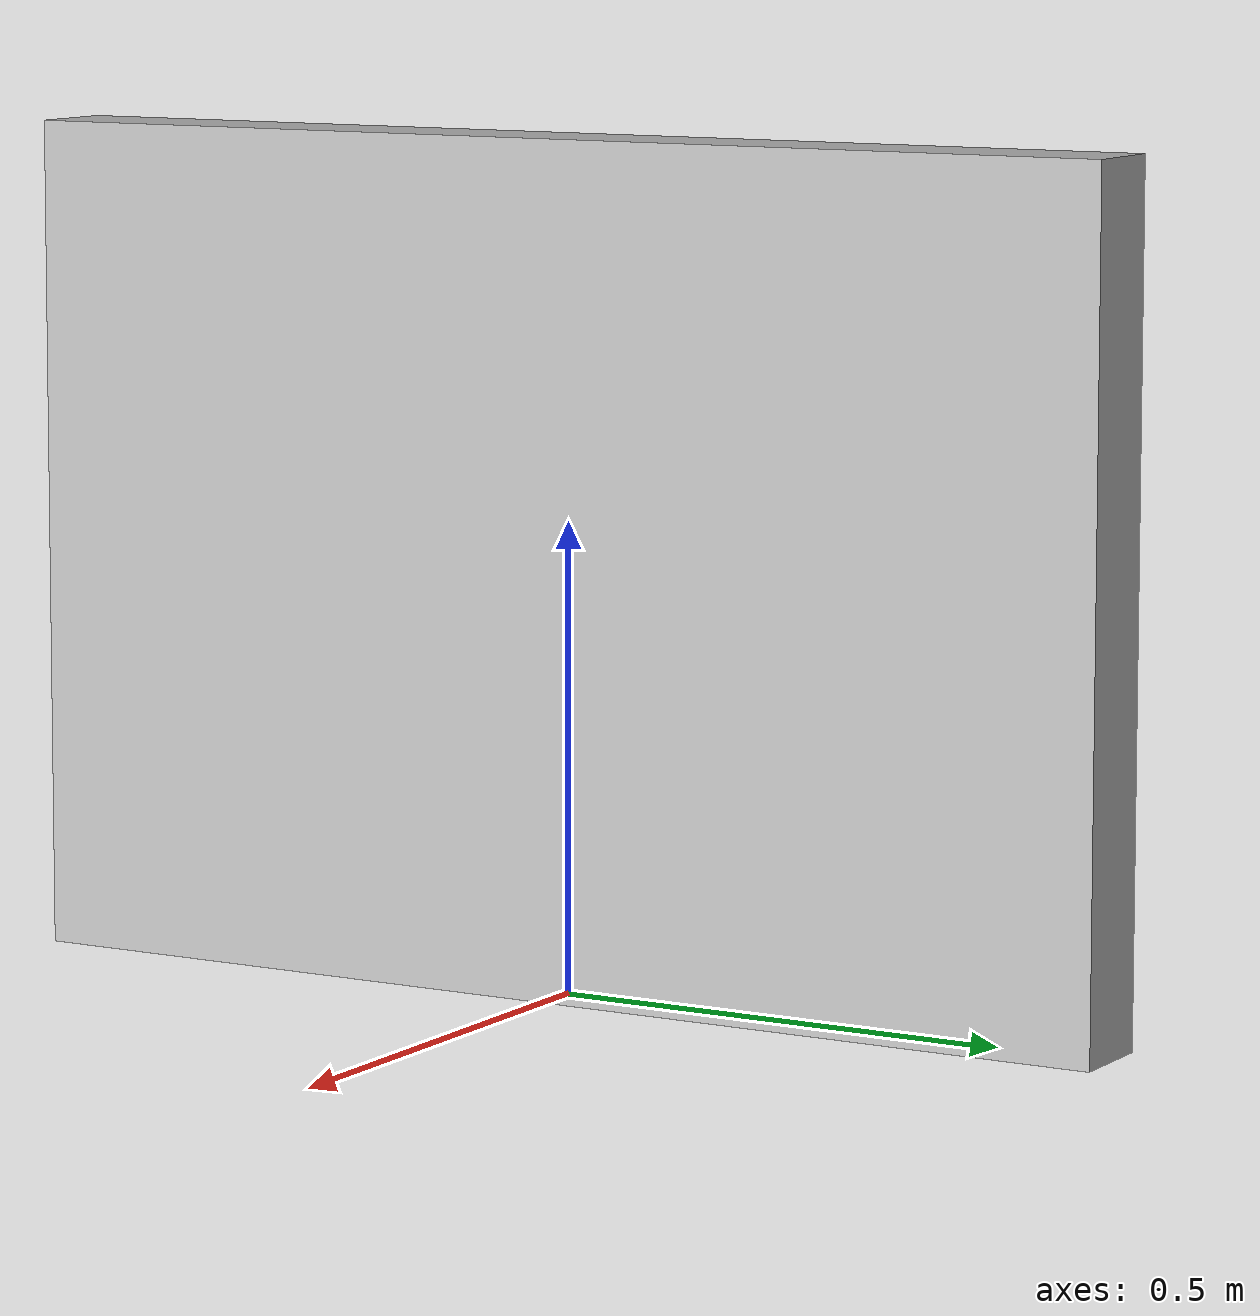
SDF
<?xml version="1.0"?>
<sdf version="1.6">
  <model name="rwc2017/tv">
    <link name="1_link">
      <collision name="1_col">
        <geometry>
          <box>
            <size>0.1 1.25 0.9</size>
          </box>
        </geometry>
      </collision>
      <visual name="1_vis">
        <geometry>
          <box>
            <size>0.1 1.25 0.9</size>
          </box>
        </geometry>
        <material>
          <ambient>0.75 0.75 0.75 1</ambient>
        </material>
      </visual>
      <pose>0 0 0.45 0 0 0</pose>
    </link>
    <link name="on_top_of">
      <virtual_volume name="on_top_of_vv">
        <geometry>
          <box>
            <size>0.04 1.19 0.25</size>
          </box>
        </geometry>
        <pose>0.0 0.0 1.045 0 0 0</pose>
      </virtual_volume>
    </link>
    <link name="in_front_of">
      <virtual_volume name="in_front_of_vv">
        <geometry>
          <box>
            <size>0.2 1.05 0.01</size>
          </box>
        </geometry>
        <pose>0.55 0.0 0.005 0 0 0</pose>
      </virtual_volume>
    </link>
    <static>true</static>
  </model>
</sdf>
